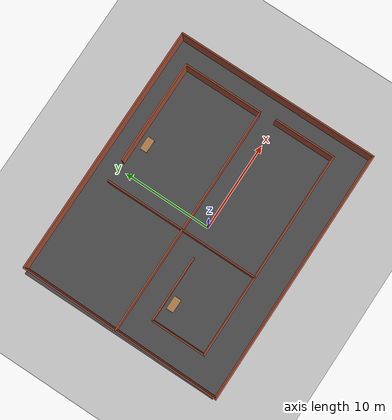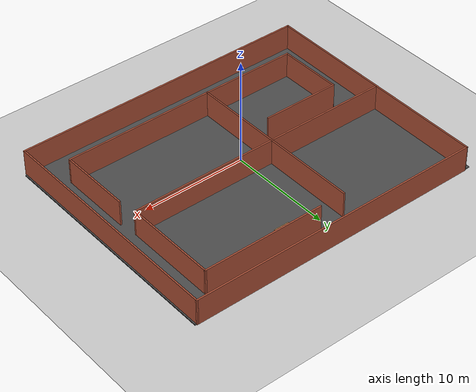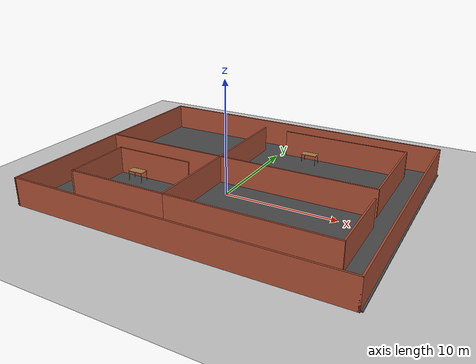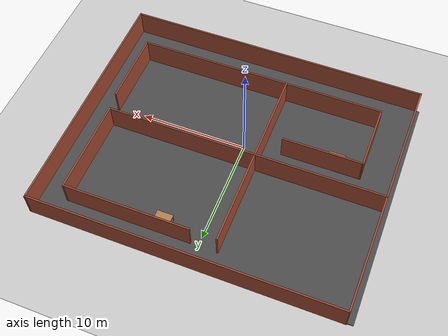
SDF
<sdf version="1.7">
 <world name="default">
  <light name="sun" type="directional">
   <pose>0 0 10 0 -0 0</pose>
   <diffuse>0.8 0.8 0.8 1</diffuse>
   <specular>0.2 0.2 0.2 1</specular>
   <attenuation>
    <range>1000</range>
    <constant>0.9</constant>
    <linear>0.01</linear>
    <quadratic>0.001</quadratic>
   </attenuation>
   <direction>-0.5 0.1 -0.9</direction>
   <spot><inner_angle>0</inner_angle><outer_angle>0</outer_angle><falloff>0</falloff></spot>
  </light>
  <model name="ground_plane">
   <static>1</static>
   <link name="link">
    <collision name="collision">
     <geometry><plane><normal>0 0 1</normal><size>100 100</size></plane></geometry>
     <surface>
      <contact><collide_bitmask>65535</collide_bitmask></contact>
      <friction><ode><mu>100</mu><mu2>50</mu2></ode></friction>
     </surface>
    </collision>
    <visual name="visual">
     <cast_shadows>0</cast_shadows>
     <geometry><plane><normal>0 0 1</normal><size>100 100</size></plane></geometry>
     <material>
      <script><uri>file://media/materials/scripts/gazebo.material</uri><name>Gazebo/Grey</name></script>
     </material>
    </visual>
   </link>
  </model>
  <gravity>0 0 -9.8</gravity>
  <magnetic_field>6e-06 2.3e-05 -4.2e-05</magnetic_field>
  <atmosphere type="adiabatic"/>
  <physics type="ode">
   <max_step_size>0.001</max_step_size>
   <real_time_factor>1</real_time_factor>
   <real_time_update_rate>1000</real_time_update_rate>
  </physics>
  <scene><ambient>0.4 0.4 0.4 1</ambient><background>0.7 0.7 0.7 1</background><shadows>1</shadows></scene>
  <spherical_coordinates>
   <surface_model>EARTH_WGS84</surface_model>
   <latitude_deg>0</latitude_deg>
   <longitude_deg>0</longitude_deg>
   <elevation>0</elevation>
   <heading_deg>0</heading_deg>
  </spherical_coordinates>
  <model name="Stugalux_Building_1">
   <pose>0.55806 1.47016 0 0 -0 0</pose>
   <link name="Wall_0">
    <collision name="Wall_0_Collision">
     <geometry><box><size>28.75 0.15 2.5</size></box></geometry>
     <pose>0 0 1.25 0 -0 0</pose>
    </collision>
    <visual name="Wall_0_Visual">
     <pose>0 0 1.25 0 -0 0</pose>
     <geometry><box><size>28.75 0.15 2.5</size></box></geometry>
     <material>
      <script><uri>file://media/materials/scripts/gazebo.material</uri><name>Gazebo/Bricks</name></script>
      <ambient>1 1 1 1</ambient>
     </material>
     <meta><layer>0</layer></meta>
    </visual>
    <pose>0.000408 -11.425 0 0 -0 0</pose>
   </link>
   <link name="Wall_1">
    <collision name="Wall_1_Collision">
     <geometry><box><size>23 0.15 2.5</size></box></geometry>
     <pose>0 0 1.25 0 -0 0</pose>
    </collision>
    <visual name="Wall_1_Visual">
     <pose>0 0 1.25 0 -0 0</pose>
     <geometry><box><size>23 0.15 2.5</size></box></geometry>
     <material>
      <script><uri>file://media/materials/scripts/gazebo.material</uri><name>Gazebo/Bricks</name></script>
      <ambient>1 1 1 1</ambient>
     </material>
     <meta><layer>0</layer></meta>
    </visual>
    <pose>14.3004 -0 0 0 -0 1.5708</pose>
   </link>
   <link name="Wall_10">
    <collision name="Wall_10_Collision">
     <geometry><box><size>11.75 0.15 2.5</size></box></geometry>
     <pose>0 0 1.25 0 -0 0</pose>
    </collision>
    <visual name="Wall_10_Visual">
     <pose>0 0 1.25 0 -0 0</pose>
     <geometry><box><size>11.75 0.15 2.5</size></box></geometry>
     <material>
      <script><uri>file://media/materials/scripts/gazebo.material</uri><name>Gazebo/Bricks</name></script>
      <ambient>1 1 1 1</ambient>
     </material>
     <meta><layer>0</layer></meta>
    </visual>
    <pose>6.01614 9.31003 0 0 -0 3.14159</pose>
   </link>
   <link name="Wall_12">
    <collision name="Wall_12_Collision">
     <geometry><box><size>8.75 0.15 2.5</size></box></geometry>
     <pose>0 0 1.25 0 -0 0</pose>
    </collision>
    <visual name="Wall_12_Visual">
     <pose>0 0 1.25 0 -0 0</pose>
     <geometry><box><size>8.75 0.15 2.5</size></box></geometry>
     <material>
      <script><uri>file://media/materials/scripts/gazebo.material</uri><name>Gazebo/Bricks</name></script>
      <ambient>1 1 1 1</ambient>
     </material>
     <meta><layer>0</layer></meta>
    </visual>
    <pose>-2.28386 -3.83997 0 0 -0 -1.5708</pose>
   </link>
   <link name="Wall_13">
    <collision name="Wall_13_Collision">
     <geometry><box><size>14.5 0.15 2.5</size></box></geometry>
     <pose>0 0 1.25 0 -0 0</pose>
    </collision>
    <visual name="Wall_13_Visual">
     <pose>0 0 1.25 0 -0 0</pose>
     <geometry><box><size>14.5 0.15 2.5</size></box></geometry>
     <material>
      <script><uri>file://media/materials/scripts/gazebo.material</uri><name>Gazebo/Bricks</name></script>
      <ambient>1 1 1 1</ambient>
     </material>
     <meta><layer>0</layer></meta>
    </visual>
    <pose>4.89114 -8.13997 0 0 -0 0</pose>
   </link>
   <link name="Wall_14">
    <collision name="Wall_14_Collision">
     <geometry><box><size>7 0.15 2.5</size></box></geometry>
     <pose>0 0 1.25 0 -0 0</pose>
    </collision>
    <visual name="Wall_14_Visual">
     <pose>0 0 1.25 0 -0 0</pose>
     <geometry><box><size>7 0.15 2.5</size></box></geometry>
     <material>
      <script><uri>file://media/materials/scripts/gazebo.material</uri><name>Gazebo/Bricks</name></script>
      <ambient>1 1 1 1</ambient>
     </material>
     <meta><layer>0</layer></meta>
    </visual>
    <pose>12.0661 -4.71497 0 0 -0 1.5708</pose>
   </link>
   <link name="Wall_16">
    <collision name="Wall_16_Collision">
     <geometry><box><size>9.25 0.15 2.5</size></box></geometry>
     <pose>0 0 1.25 0 -0 0</pose>
    </collision>
    <visual name="Wall_16_Visual">
     <pose>0 0 1.25 0 -0 0</pose>
     <geometry><box><size>9.25 0.15 2.5</size></box></geometry>
     <material>
      <script><uri>file://media/materials/scripts/gazebo.material</uri><name>Gazebo/Bricks</name></script>
      <ambient>1 1 1 1</ambient>
     </material>
     <meta><layer>0</layer></meta>
    </visual>
    <pose>-6.83387 -8.13997 0 0 -0 3.14159</pose>
   </link>
   <link name="Wall_17">
    <collision name="Wall_17_Collision">
     <geometry><box><size>6.25 0.15 2.5</size></box></geometry>
     <pose>0 0 1.25 0 -0 0</pose>
    </collision>
    <visual name="Wall_17_Visual">
     <pose>0 0 1.25 0 -0 0</pose>
     <geometry><box><size>6.25 0.15 2.5</size></box></geometry>
     <material>
      <script><uri>file://media/materials/scripts/gazebo.material</uri><name>Gazebo/Bricks</name></script>
      <ambient>1 1 1 1</ambient>
     </material>
     <meta><layer>0</layer></meta>
    </visual>
    <pose>-11.3839 -5.08997 0 0 -0 1.5708</pose>
   </link>
   <link name="Wall_18">
    <collision name="Wall_18_Collision">
     <geometry><box><size>7.5 0.15 2.5</size></box></geometry>
     <pose>0 0 1.25 0 -0 0</pose>
    </collision>
    <visual name="Wall_18_Visual">
     <pose>0 0 1.25 0 -0 0</pose>
     <geometry><box><size>7.5 0.15 2.5</size></box></geometry>
     <material>
      <script><uri>file://media/materials/scripts/gazebo.material</uri><name>Gazebo/Bricks</name></script>
      <ambient>1 1 1 1</ambient>
     </material>
     <meta><layer>0</layer></meta>
    </visual>
    <pose>-7.70887 -2.03997 0 0 -0 0</pose>
   </link>
   <link name="Wall_2">
    <collision name="Wall_2_Collision">
     <geometry><box><size>28.5 0.15 2.5</size></box></geometry>
     <pose>0 0 1.25 0 -0 0</pose>
    </collision>
    <visual name="Wall_2_Visual">
     <pose>0 0 1.25 0 -0 0</pose>
     <geometry><box><size>28.5 0.15 2.5</size></box></geometry>
     <material>
      <script><uri>file://media/materials/scripts/gazebo.material</uri><name>Gazebo/Bricks</name></script>
      <ambient>1 1 1 1</ambient>
     </material>
     <meta><layer>0</layer></meta>
    </visual>
    <pose>0.125408 11.425 0 0 -0 3.14159</pose>
   </link>
   <link name="Wall_3">
    <collision name="Wall_3_Collision">
     <geometry><box><size>23.0014 0.15 2.5</size></box></geometry>
     <pose>0 0 1.25 0 -0 0</pose>
    </collision>
    <visual name="Wall_3_Visual">
     <pose>0 0 1.25 0 -0 0</pose>
     <geometry><box><size>23.0014 0.15 2.5</size></box></geometry>
     <material>
      <script><uri>file://media/materials/scripts/gazebo.material</uri><name>Gazebo/Bricks</name></script>
      <ambient>1 1 1 1</ambient>
     </material>
     <meta><layer>0</layer></meta>
    </visual>
    <pose>-14.1746 -0 0 0 -0 -1.58174</pose>
   </link>
   <link name="Wall_5">
    <collision name="Wall_5_Collision">
     <geometry><box><size>12 0.15 2.5</size></box></geometry>
     <pose>0 0 1.25 0 -0 0</pose>
    </collision>
    <visual name="Wall_5_Visual">
     <pose>0 0 1.25 0 -0 0</pose>
     <geometry><box><size>12 0.15 2.5</size></box></geometry>
     <material>
      <script><uri>file://media/materials/scripts/gazebo.material</uri><name>Gazebo/Bricks</name></script>
      <ambient>1 1 1 1</ambient>
     </material>
     <meta><layer>0</layer></meta>
    </visual>
    <pose>-8.20886 0.46003 0 0 -0 0</pose>
   </link>
   <link name="Wall_6">
    <collision name="Wall_6_Collision">
     <geometry><box><size>9 0.15 2.5</size></box></geometry>
     <pose>0 0 1.25 0 -0 0</pose>
    </collision>
    <visual name="Wall_6_Visual">
     <pose>0 0 1.25 0 -0 0</pose>
     <geometry><box><size>9 0.15 2.5</size></box></geometry>
     <material>
      <script><uri>file://media/materials/scripts/gazebo.material</uri><name>Gazebo/Bricks</name></script>
      <ambient>1 1 1 1</ambient>
     </material>
     <meta><layer>0</layer></meta>
    </visual>
    <pose>-2.28386 4.88503 0 0 -0 1.5708</pose>
   </link>
   <link name="Wall_8">
    <collision name="Wall_8_Collision">
     <geometry><box><size>14.25 0.15 2.5</size></box></geometry>
     <pose>0 0 1.25 0 -0 0</pose>
    </collision>
    <visual name="Wall_8_Visual">
     <pose>0 0 1.25 0 -0 0</pose>
     <geometry><box><size>14.25 0.15 2.5</size></box></geometry>
     <material>
      <script><uri>file://media/materials/scripts/gazebo.material</uri><name>Gazebo/Bricks</name></script>
      <ambient>1 1 1 1</ambient>
     </material>
     <meta><layer>0</layer></meta>
    </visual>
    <pose>4.76614 0.46003 0 0 -0 0</pose>
   </link>
   <link name="Wall_9">
    <collision name="Wall_9_Collision">
     <geometry><box><size>9 0.15 2.5</size></box></geometry>
     <pose>0 0 1.25 0 -0 0</pose>
    </collision>
    <visual name="Wall_9_Visual">
     <pose>0 0 1.25 0 -0 0</pose>
     <geometry><box><size>9 0.15 2.5</size></box></geometry>
     <material>
      <script><uri>file://media/materials/scripts/gazebo.material</uri><name>Gazebo/Bricks</name></script>
      <ambient>1 1 1 1</ambient>
     </material>
     <meta><layer>0</layer></meta>
    </visual>
    <pose>11.8161 4.88503 0 0 -0 1.5708</pose>
   </link>
   <static>1</static>
  </model>
  <model name="asphalt_plane">
   <static>1</static>
   <link name="link">
    <collision name="collision"><geometry><box><size>29.1756 22.7466 0.1</size></box></geometry></collision>
    <visual name="visual">
     <cast_shadows>0</cast_shadows>
     <geometry><box><size>29.1756 22.7466 0.1</size></box></geometry>
     <material>
      <script>
       <uri>model://asphalt_plane/materials/scripts</uri>
       <uri>model://asphalt_plane/materials/textures</uri>
       <name>vrc/asphalt</name>
      </script>
     </material>
    </visual>
   </link>
   <pose>0.478293 1.4953 0 0 -0 0</pose>
  </model>
  <model name="table">
   <static>1</static>
   <link name="link">
    <collision name="surface">
     <pose>0 0 1 0 -0 0</pose>
     <geometry><box><size>1.5 0.8 0.03</size></box></geometry>
     <surface><friction><ode><mu>0.6</mu><mu2>0.6</mu2></ode></friction></surface>
    </collision>
    <visual name="visual1">
     <pose>0 0 1 0 -0 0</pose>
     <geometry><box><size>1.5 0.8 0.03</size></box></geometry>
     <material>
      <script><uri>file://media/materials/scripts/gazebo.material</uri><name>Gazebo/Wood</name></script>
     </material>
    </visual>
    <collision name="front_left_leg">
     <pose>0.68 0.38 0.5 0 -0 0</pose>
     <geometry><cylinder><radius>0.02</radius><length>1</length></cylinder></geometry>
    </collision>
    <visual name="front_left_leg">
     <pose>0.68 0.38 0.5 0 -0 0</pose>
     <geometry><cylinder><radius>0.02</radius><length>1</length></cylinder></geometry>
     <material>
      <script><uri>file://media/materials/scripts/gazebo.material</uri><name>Gazebo/Grey</name></script>
     </material>
    </visual>
    <collision name="front_right_leg">
     <pose>0.68 -0.38 0.5 0 -0 0</pose>
     <geometry><cylinder><radius>0.02</radius><length>1</length></cylinder></geometry>
    </collision>
    <visual name="front_right_leg">
     <pose>0.68 -0.38 0.5 0 -0 0</pose>
     <geometry><cylinder><radius>0.02</radius><length>1</length></cylinder></geometry>
     <material>
      <script><uri>file://media/materials/scripts/gazebo.material</uri><name>Gazebo/Grey</name></script>
     </material>
    </visual>
    <collision name="back_right_leg">
     <pose>-0.68 -0.38 0.5 0 -0 0</pose>
     <geometry><cylinder><radius>0.02</radius><length>1</length></cylinder></geometry>
    </collision>
    <visual name="back_right_leg">
     <pose>-0.68 -0.38 0.5 0 -0 0</pose>
     <geometry><cylinder><radius>0.02</radius><length>1</length></cylinder></geometry>
     <material>
      <script><uri>file://media/materials/scripts/gazebo.material</uri><name>Gazebo/Grey</name></script>
     </material>
    </visual>
    <collision name="back_left_leg">
     <pose>-0.68 0.38 0.5 0 -0 0</pose>
     <geometry><cylinder><radius>0.02</radius><length>1</length></cylinder></geometry>
    </collision>
    <visual name="back_left_leg">
     <pose>-0.68 0.38 0.5 0 -0 0</pose>
     <geometry><cylinder><radius>0.02</radius><length>1</length></cylinder></geometry>
     <material>
      <script><uri>file://media/materials/scripts/gazebo.material</uri><name>Gazebo/Grey</name></script>
     </material>
    </visual>
   </link>
   <pose>-8.34785 -1.42899 0 0 -0 0</pose>
  </model>
  <model name="table_clone">
   <static>1</static>
   <link name="link">
    <collision name="surface">
     <pose>0 0 1 0 -0 0</pose>
     <geometry><box><size>1.5 0.8 0.03</size></box></geometry>
     <surface><friction><ode><mu>0.6</mu><mu2>0.6</mu2></ode></friction></surface>
    </collision>
    <visual name="visual1">
     <pose>0 0 1 0 -0 0</pose>
     <geometry><box><size>1.5 0.8 0.03</size></box></geometry>
     <material>
      <script><uri>file://media/materials/scripts/gazebo.material</uri><name>Gazebo/Wood</name></script>
     </material>
    </visual>
    <collision name="front_left_leg">
     <pose>0.68 0.38 0.5 0 -0 0</pose>
     <geometry><cylinder><radius>0.02</radius><length>1</length></cylinder></geometry>
    </collision>
    <visual name="front_left_leg">
     <pose>0.68 0.38 0.5 0 -0 0</pose>
     <geometry><cylinder><radius>0.02</radius><length>1</length></cylinder></geometry>
     <material>
      <script><uri>file://media/materials/scripts/gazebo.material</uri><name>Gazebo/Grey</name></script>
     </material>
    </visual>
    <collision name="front_right_leg">
     <pose>0.68 -0.38 0.5 0 -0 0</pose>
     <geometry><cylinder><radius>0.02</radius><length>1</length></cylinder></geometry>
    </collision>
    <visual name="front_right_leg">
     <pose>0.68 -0.38 0.5 0 -0 0</pose>
     <geometry><cylinder><radius>0.02</radius><length>1</length></cylinder></geometry>
     <material>
      <script><uri>file://media/materials/scripts/gazebo.material</uri><name>Gazebo/Grey</name></script>
     </material>
    </visual>
    <collision name="back_right_leg">
     <pose>-0.68 -0.38 0.5 0 -0 0</pose>
     <geometry><cylinder><radius>0.02</radius><length>1</length></cylinder></geometry>
    </collision>
    <visual name="back_right_leg">
     <pose>-0.68 -0.38 0.5 0 -0 0</pose>
     <geometry><cylinder><radius>0.02</radius><length>1</length></cylinder></geometry>
     <material>
      <script><uri>file://media/materials/scripts/gazebo.material</uri><name>Gazebo/Grey</name></script>
     </material>
    </visual>
    <collision name="back_left_leg">
     <pose>-0.68 0.38 0.5 0 -0 0</pose>
     <geometry><cylinder><radius>0.02</radius><length>1</length></cylinder></geometry>
    </collision>
    <visual name="back_left_leg">
     <pose>-0.68 0.38 0.5 0 -0 0</pose>
     <geometry><cylinder><radius>0.02</radius><length>1</length></cylinder></geometry>
     <material>
      <script><uri>file://media/materials/scripts/gazebo.material</uri><name>Gazebo/Grey</name></script>
     </material>
    </visual>
   </link>
   <pose>3.59594 9.74095 0 0 -0 0</pose>
  </model>
 </world>
</sdf>
